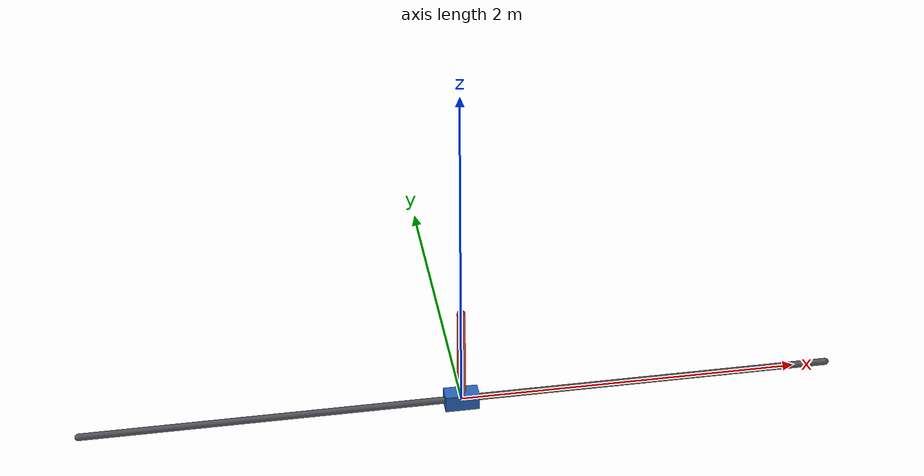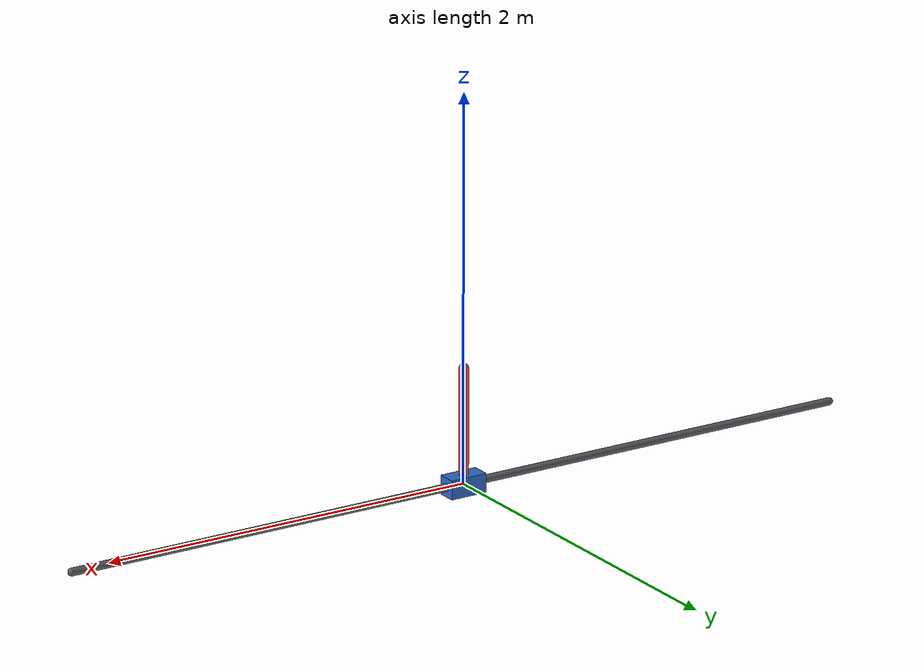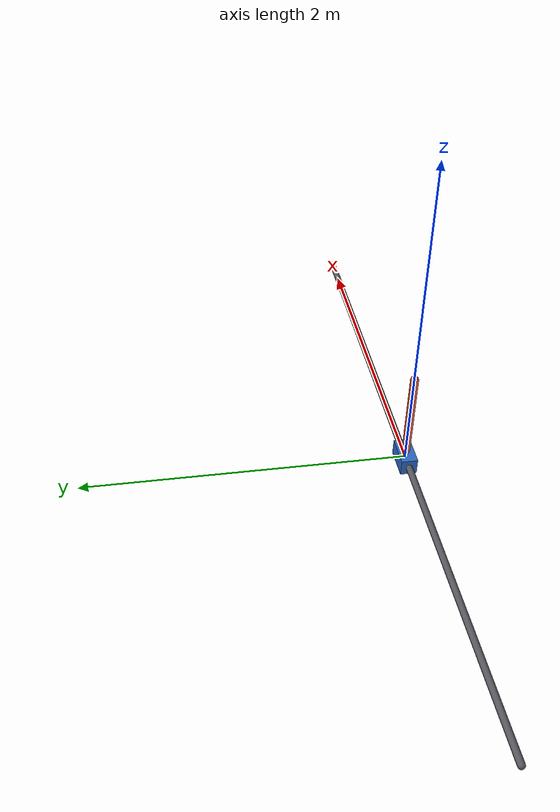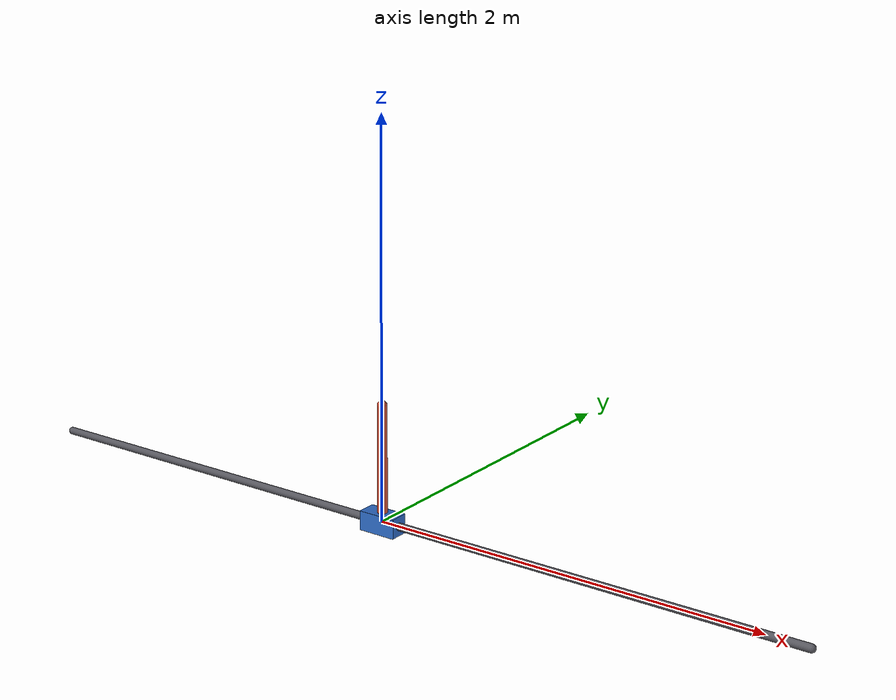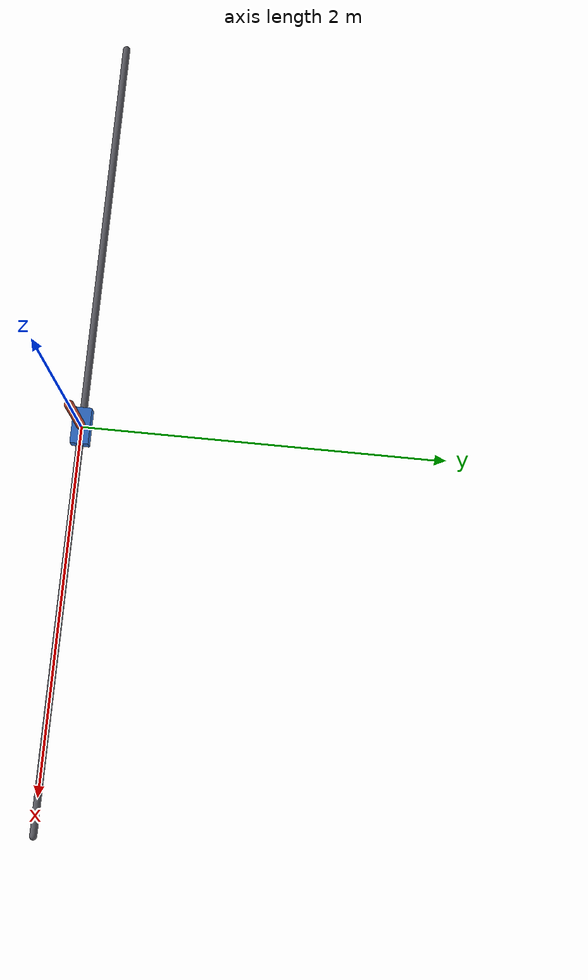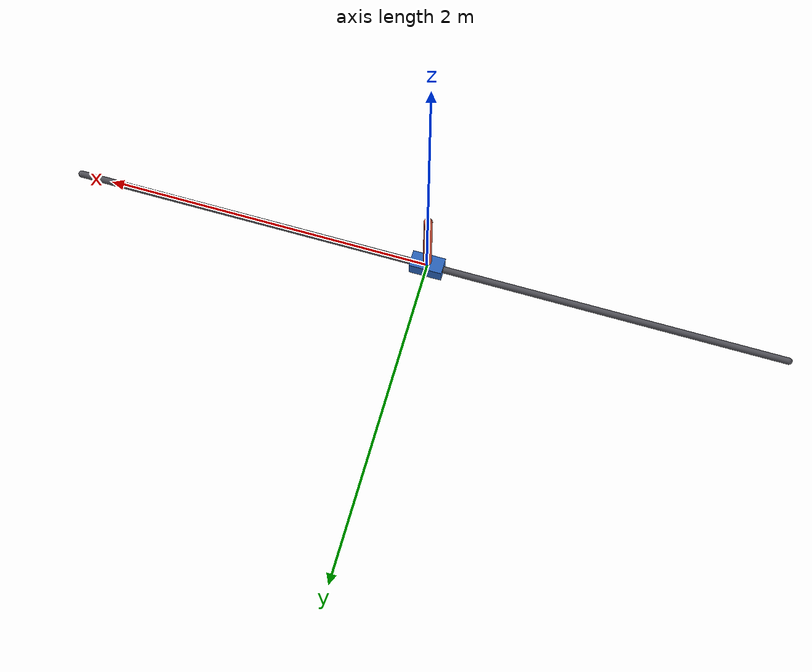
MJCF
<mujoco model="cartpole_f15l07">
  <compiler angle="radian" autolimits="true"/>

  <option timestep="0.01" integrator="implicitfast">
    <flag contact="disable"/>
  </option>

  <default>
    <geom contype="0" conaffinity="0"/>
  </default>

  <worldbody>
    <light pos="0 0 2"/>
    <geom name="rail" type="capsule" quat="0.707107 0 0.707107 0" size="0.02 2.2"
          rgba="0.35 0.35 0.38 1"/>
    <body name="cart" pos="0 0 0">
      <joint name="slider" type="slide" axis="1 0 0" range="-2.0 2.0" damping="0.05"/>
      <geom name="cart" type="box" size="0.1 0.05 0.05" mass="1" rgba="0.18 0.42 0.78 1"/>
      <body name="pole" pos="0 0 0">
        <joint name="hinge" type="hinge" axis="0 1 0" damping="0.01"/>
        <geom name="pole" type="capsule" fromto="0 0 0 0 0 0.6" size="0.025" mass="0.1"
              rgba="0.82 0.32 0.22 1"/>
      </body>
    </body>
  </worldbody>

  <actuator>
    <motor name="drive" joint="slider" gear="20" ctrlrange="-1 1"/>
  </actuator>

  <keyframe>
    <key name="hanging" qpos="0 3.14159265358979" qvel="0 0" ctrl="0"/>
  </keyframe>
</mujoco>
